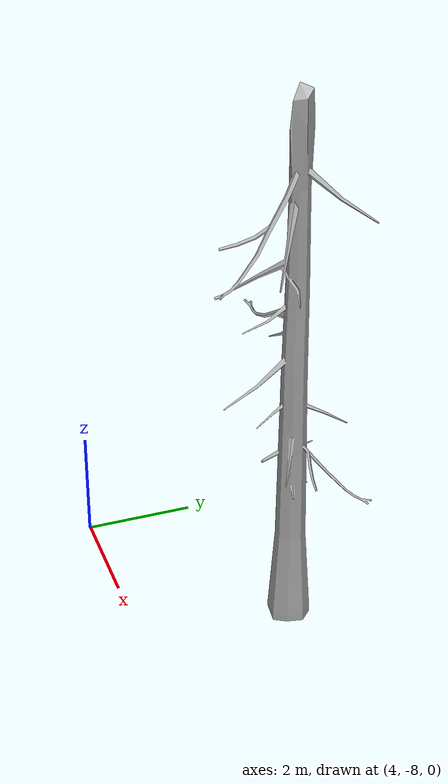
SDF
<?xml version="1.0"?>
<sdf version="1.6">
  <model name="dtree_1">
    <static>true</static>

    <link name="link">
      <pose>0 0 0 0 0 0</pose>

      <visual name="visual">
        <geometry>
          <mesh>
            <uri>model://dtree_1/meshes/dtree_1.stl</uri>
          </mesh>
        </geometry>
      </visual>

      <collision name="collision">
        <geometry>
          <box>
            <size>0.3 0.2 0.1</size>
          </box>
        </geometry>
      </collision>

      <inertial>
        <mass>1.0</mass>
        <inertia>
          <ixx>0.01</ixx> <iyy>0.01</iyy> <izz>0.01</izz>
          <ixy>0</ixy> <ixz>0</ixz> <iyz>0</iyz>
        </inertia>
      </inertial>
    </link>
  </model>
</sdf>
